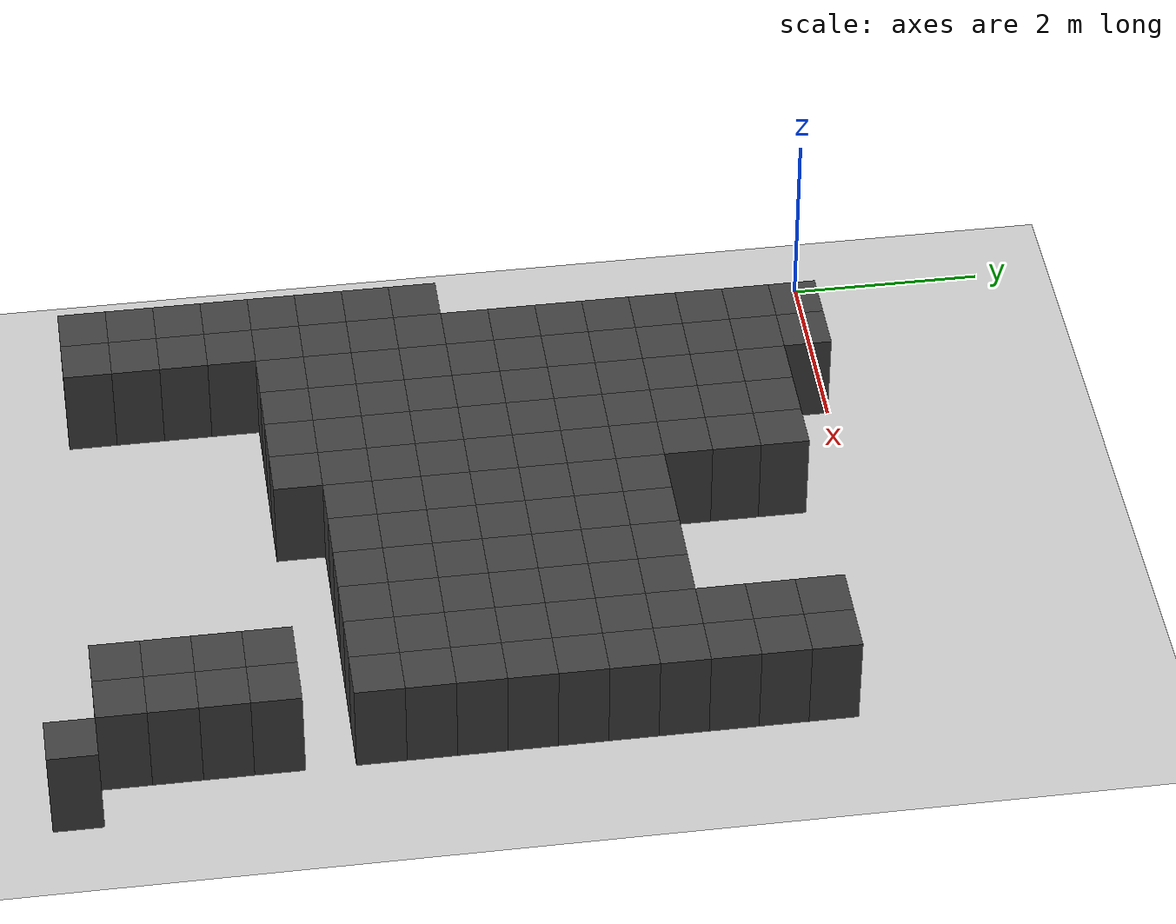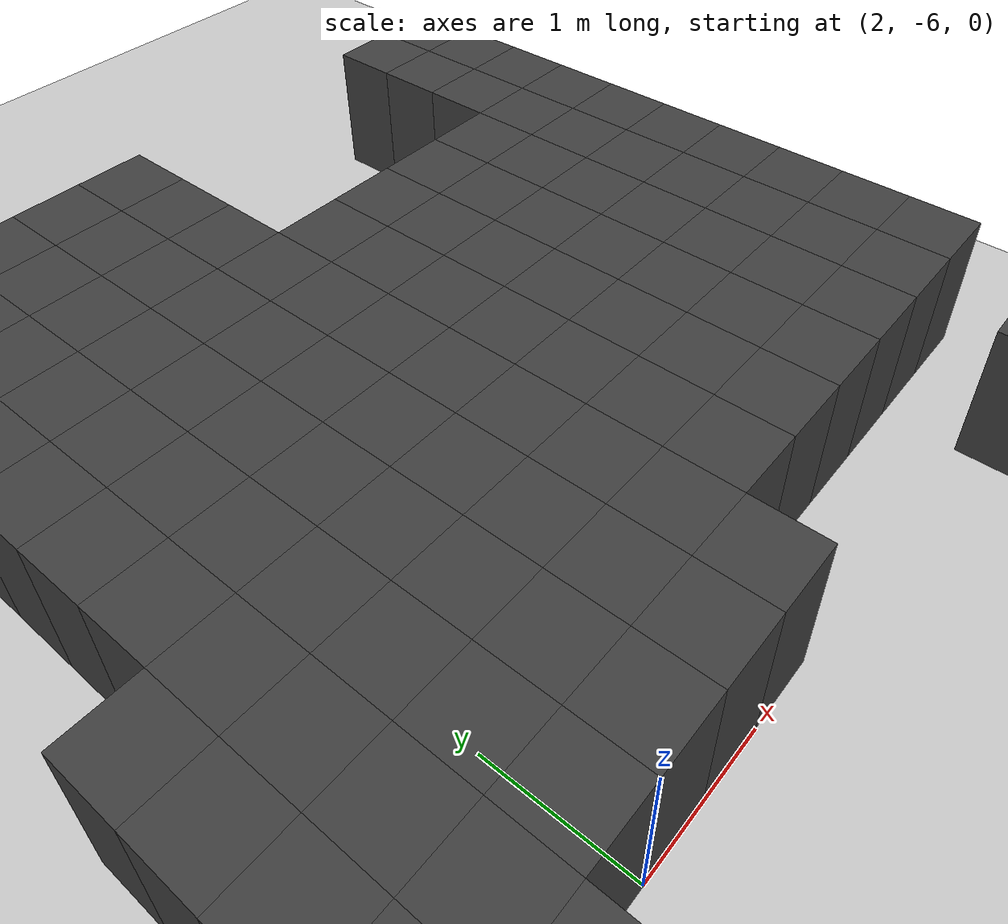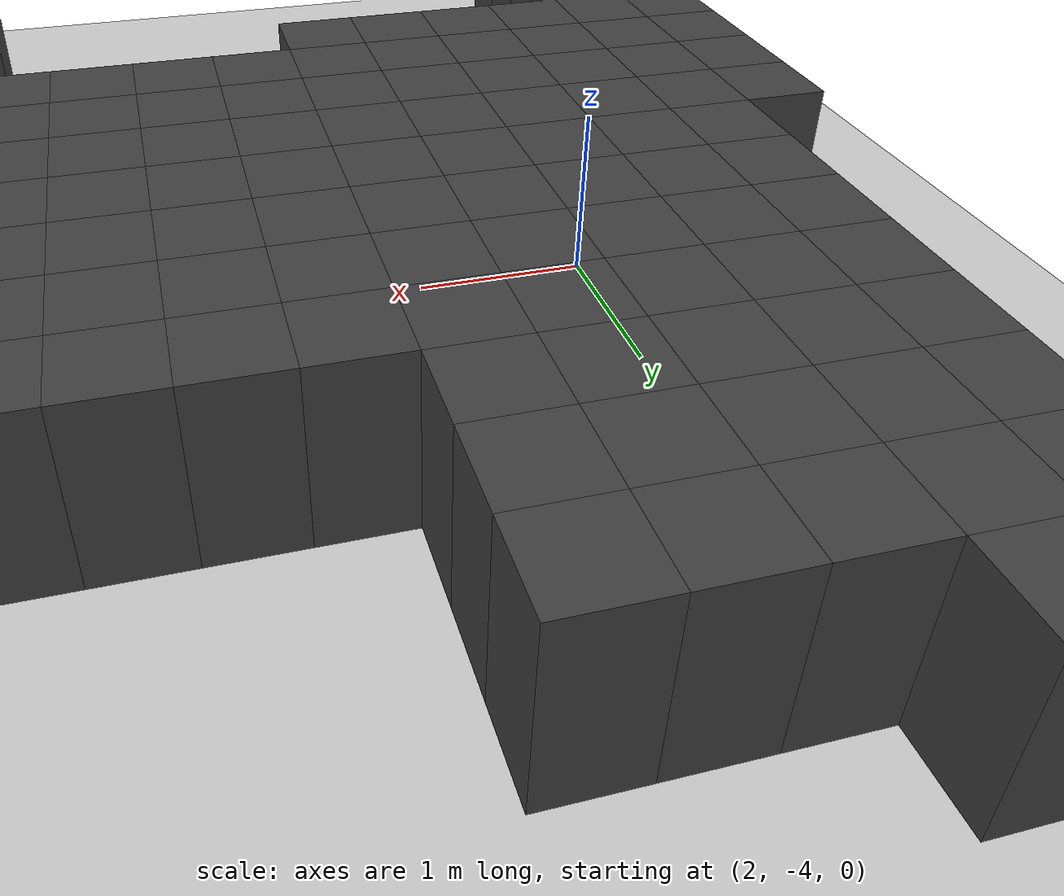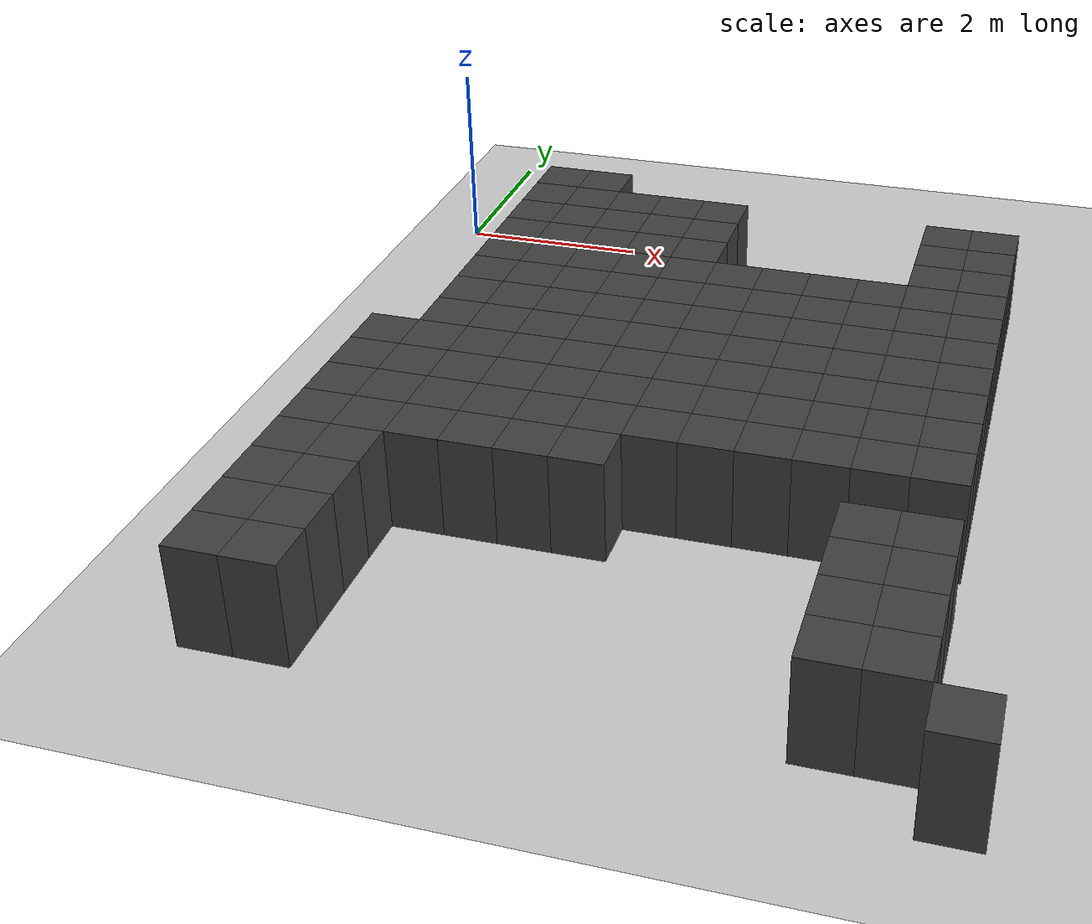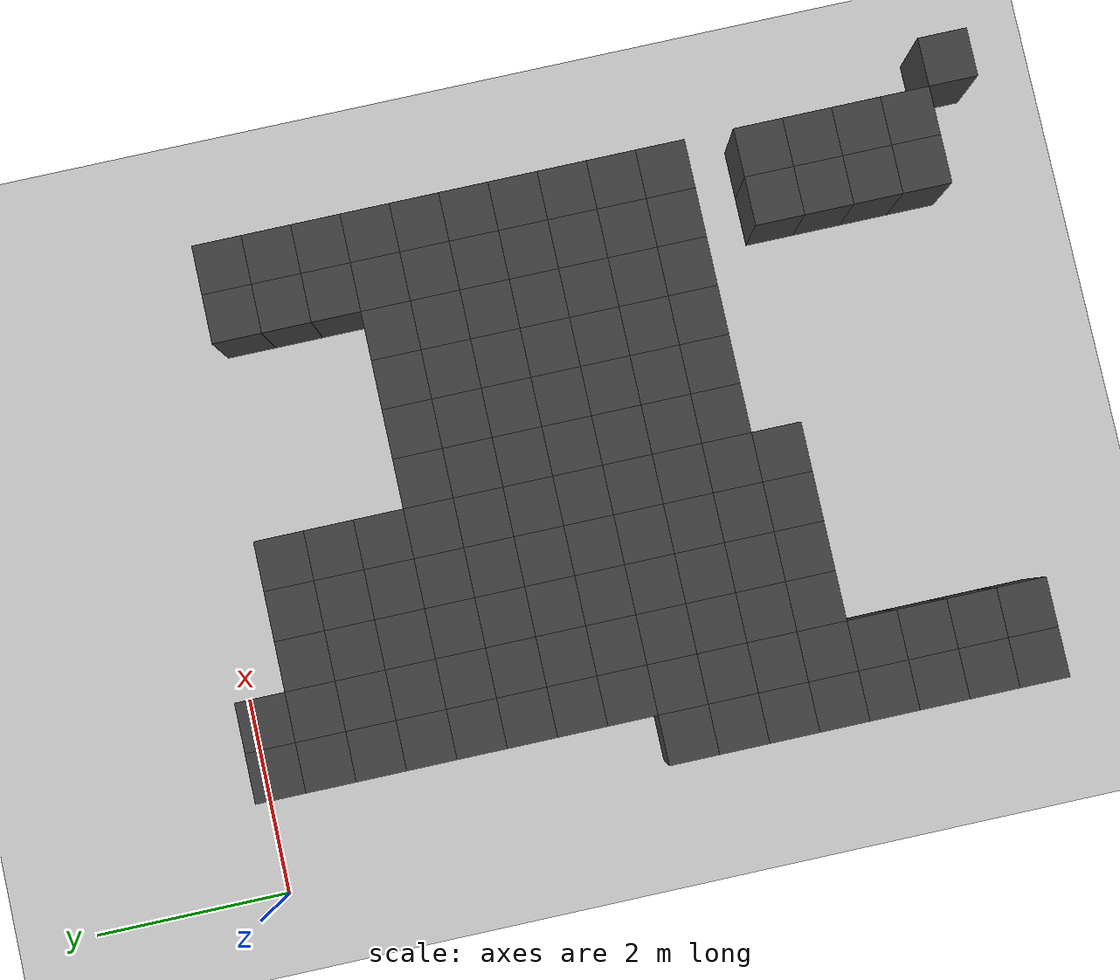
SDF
<sdf version="1.7">
 <world name="map_14495">
  <model name="ground_plane">
   <static>true</static>
   <link name="link">
    <collision name="collision">
     <geometry><plane><normal>0 0 1</normal><size>200 200</size></plane></geometry>
    </collision>
    <visual name="visual">
     <geometry><plane><normal>0 0 1</normal><size>200 200</size></plane></geometry>
     <material><ambient>0.8 0.8 0.8 1</ambient><diffuse>0.8 0.8 0.8 1</diffuse></material>
    </visual>
   </link>
  </model>
  <model name="maze_environment">
   <static>true</static>
   <link name="wall_960">
    <pose>1.250 -0.250 0.500 0 0 0</pose>
    <collision name="col"><geometry><box><size>0.5 0.5 1.0</size></box></geometry></collision>
    <visual name="vis">
     <geometry><box><size>0.5 0.5 1.0</size></box></geometry>
     <material><ambient>0.15 0.15 0.15 1</ambient><diffuse>0.25 0.25 0.25 1</diffuse></material>
    </visual>
   </link>
   <link name="wall_961">
    <pose>1.750 -0.250 0.500 0 0 0</pose>
    <collision name="col"><geometry><box><size>0.5 0.5 1.0</size></box></geometry></collision>
    <visual name="vis">
     <geometry><box><size>0.5 0.5 1.0</size></box></geometry>
     <material><ambient>0.15 0.15 0.15 1</ambient><diffuse>0.25 0.25 0.25 1</diffuse></material>
    </visual>
   </link>
   <link name="wall_981">
    <pose>1.250 -0.750 0.500 0 0 0</pose>
    <collision name="col"><geometry><box><size>0.5 0.5 1.0</size></box></geometry></collision>
    <visual name="vis">
     <geometry><box><size>0.5 0.5 1.0</size></box></geometry>
     <material><ambient>0.15 0.15 0.15 1</ambient><diffuse>0.25 0.25 0.25 1</diffuse></material>
    </visual>
   </link>
   <link name="wall_982">
    <pose>1.750 -0.750 0.500 0 0 0</pose>
    <collision name="col"><geometry><box><size>0.5 0.5 1.0</size></box></geometry></collision>
    <visual name="vis">
     <geometry><box><size>0.5 0.5 1.0</size></box></geometry>
     <material><ambient>0.15 0.15 0.15 1</ambient><diffuse>0.25 0.25 0.25 1</diffuse></material>
    </visual>
   </link>
   <link name="wall_983">
    <pose>2.250 -0.750 0.500 0 0 0</pose>
    <collision name="col"><geometry><box><size>0.5 0.5 1.0</size></box></geometry></collision>
    <visual name="vis">
     <geometry><box><size>0.5 0.5 1.0</size></box></geometry>
     <material><ambient>0.15 0.15 0.15 1</ambient><diffuse>0.25 0.25 0.25 1</diffuse></material>
    </visual>
   </link>
   <link name="wall_984">
    <pose>2.750 -0.750 0.500 0 0 0</pose>
    <collision name="col"><geometry><box><size>0.5 0.5 1.0</size></box></geometry></collision>
    <visual name="vis">
     <geometry><box><size>0.5 0.5 1.0</size></box></geometry>
     <material><ambient>0.15 0.15 0.15 1</ambient><diffuse>0.25 0.25 0.25 1</diffuse></material>
    </visual>
   </link>
   <link name="wall_985">
    <pose>3.250 -0.750 0.500 0 0 0</pose>
    <collision name="col"><geometry><box><size>0.5 0.5 1.0</size></box></geometry></collision>
    <visual name="vis">
     <geometry><box><size>0.5 0.5 1.0</size></box></geometry>
     <material><ambient>0.15 0.15 0.15 1</ambient><diffuse>0.25 0.25 0.25 1</diffuse></material>
    </visual>
   </link>
   <link name="wall_986">
    <pose>5.750 -0.750 0.500 0 0 0</pose>
    <collision name="col"><geometry><box><size>0.5 0.5 1.0</size></box></geometry></collision>
    <visual name="vis">
     <geometry><box><size>0.5 0.5 1.0</size></box></geometry>
     <material><ambient>0.15 0.15 0.15 1</ambient><diffuse>0.25 0.25 0.25 1</diffuse></material>
    </visual>
   </link>
   <link name="wall_987">
    <pose>6.250 -0.750 0.500 0 0 0</pose>
    <collision name="col"><geometry><box><size>0.5 0.5 1.0</size></box></geometry></collision>
    <visual name="vis">
     <geometry><box><size>0.5 0.5 1.0</size></box></geometry>
     <material><ambient>0.15 0.15 0.15 1</ambient><diffuse>0.25 0.25 0.25 1</diffuse></material>
    </visual>
   </link>
   <link name="wall_1007">
    <pose>1.250 -1.250 0.500 0 0 0</pose>
    <collision name="col"><geometry><box><size>0.5 0.5 1.0</size></box></geometry></collision>
    <visual name="vis">
     <geometry><box><size>0.5 0.5 1.0</size></box></geometry>
     <material><ambient>0.15 0.15 0.15 1</ambient><diffuse>0.25 0.25 0.25 1</diffuse></material>
    </visual>
   </link>
   <link name="wall_1008">
    <pose>1.750 -1.250 0.500 0 0 0</pose>
    <collision name="col"><geometry><box><size>0.5 0.5 1.0</size></box></geometry></collision>
    <visual name="vis">
     <geometry><box><size>0.5 0.5 1.0</size></box></geometry>
     <material><ambient>0.15 0.15 0.15 1</ambient><diffuse>0.25 0.25 0.25 1</diffuse></material>
    </visual>
   </link>
   <link name="wall_1009">
    <pose>2.250 -1.250 0.500 0 0 0</pose>
    <collision name="col"><geometry><box><size>0.5 0.5 1.0</size></box></geometry></collision>
    <visual name="vis">
     <geometry><box><size>0.5 0.5 1.0</size></box></geometry>
     <material><ambient>0.15 0.15 0.15 1</ambient><diffuse>0.25 0.25 0.25 1</diffuse></material>
    </visual>
   </link>
   <link name="wall_1010">
    <pose>2.750 -1.250 0.500 0 0 0</pose>
    <collision name="col"><geometry><box><size>0.5 0.5 1.0</size></box></geometry></collision>
    <visual name="vis">
     <geometry><box><size>0.5 0.5 1.0</size></box></geometry>
     <material><ambient>0.15 0.15 0.15 1</ambient><diffuse>0.25 0.25 0.25 1</diffuse></material>
    </visual>
   </link>
   <link name="wall_1011">
    <pose>3.250 -1.250 0.500 0 0 0</pose>
    <collision name="col"><geometry><box><size>0.5 0.5 1.0</size></box></geometry></collision>
    <visual name="vis">
     <geometry><box><size>0.5 0.5 1.0</size></box></geometry>
     <material><ambient>0.15 0.15 0.15 1</ambient><diffuse>0.25 0.25 0.25 1</diffuse></material>
    </visual>
   </link>
   <link name="wall_1012">
    <pose>5.750 -1.250 0.500 0 0 0</pose>
    <collision name="col"><geometry><box><size>0.5 0.5 1.0</size></box></geometry></collision>
    <visual name="vis">
     <geometry><box><size>0.5 0.5 1.0</size></box></geometry>
     <material><ambient>0.15 0.15 0.15 1</ambient><diffuse>0.25 0.25 0.25 1</diffuse></material>
    </visual>
   </link>
   <link name="wall_1013">
    <pose>6.250 -1.250 0.500 0 0 0</pose>
    <collision name="col"><geometry><box><size>0.5 0.5 1.0</size></box></geometry></collision>
    <visual name="vis">
     <geometry><box><size>0.5 0.5 1.0</size></box></geometry>
     <material><ambient>0.15 0.15 0.15 1</ambient><diffuse>0.25 0.25 0.25 1</diffuse></material>
    </visual>
   </link>
   <link name="wall_1033">
    <pose>1.250 -1.750 0.500 0 0 0</pose>
    <collision name="col"><geometry><box><size>0.5 0.5 1.0</size></box></geometry></collision>
    <visual name="vis">
     <geometry><box><size>0.5 0.5 1.0</size></box></geometry>
     <material><ambient>0.15 0.15 0.15 1</ambient><diffuse>0.25 0.25 0.25 1</diffuse></material>
    </visual>
   </link>
   <link name="wall_1034">
    <pose>1.750 -1.750 0.500 0 0 0</pose>
    <collision name="col"><geometry><box><size>0.5 0.5 1.0</size></box></geometry></collision>
    <visual name="vis">
     <geometry><box><size>0.5 0.5 1.0</size></box></geometry>
     <material><ambient>0.15 0.15 0.15 1</ambient><diffuse>0.25 0.25 0.25 1</diffuse></material>
    </visual>
   </link>
   <link name="wall_1035">
    <pose>2.250 -1.750 0.500 0 0 0</pose>
    <collision name="col"><geometry><box><size>0.5 0.5 1.0</size></box></geometry></collision>
    <visual name="vis">
     <geometry><box><size>0.5 0.5 1.0</size></box></geometry>
     <material><ambient>0.15 0.15 0.15 1</ambient><diffuse>0.25 0.25 0.25 1</diffuse></material>
    </visual>
   </link>
   <link name="wall_1036">
    <pose>2.750 -1.750 0.500 0 0 0</pose>
    <collision name="col"><geometry><box><size>0.5 0.5 1.0</size></box></geometry></collision>
    <visual name="vis">
     <geometry><box><size>0.5 0.5 1.0</size></box></geometry>
     <material><ambient>0.15 0.15 0.15 1</ambient><diffuse>0.25 0.25 0.25 1</diffuse></material>
    </visual>
   </link>
   <link name="wall_1037">
    <pose>3.250 -1.750 0.500 0 0 0</pose>
    <collision name="col"><geometry><box><size>0.5 0.5 1.0</size></box></geometry></collision>
    <visual name="vis">
     <geometry><box><size>0.5 0.5 1.0</size></box></geometry>
     <material><ambient>0.15 0.15 0.15 1</ambient><diffuse>0.25 0.25 0.25 1</diffuse></material>
    </visual>
   </link>
   <link name="wall_1038">
    <pose>5.750 -1.750 0.500 0 0 0</pose>
    <collision name="col"><geometry><box><size>0.5 0.5 1.0</size></box></geometry></collision>
    <visual name="vis">
     <geometry><box><size>0.5 0.5 1.0</size></box></geometry>
     <material><ambient>0.15 0.15 0.15 1</ambient><diffuse>0.25 0.25 0.25 1</diffuse></material>
    </visual>
   </link>
   <link name="wall_1039">
    <pose>6.250 -1.750 0.500 0 0 0</pose>
    <collision name="col"><geometry><box><size>0.5 0.5 1.0</size></box></geometry></collision>
    <visual name="vis">
     <geometry><box><size>0.5 0.5 1.0</size></box></geometry>
     <material><ambient>0.15 0.15 0.15 1</ambient><diffuse>0.25 0.25 0.25 1</diffuse></material>
    </visual>
   </link>
   <link name="wall_1057">
    <pose>1.250 -2.250 0.500 0 0 0</pose>
    <collision name="col"><geometry><box><size>0.5 0.5 1.0</size></box></geometry></collision>
    <visual name="vis">
     <geometry><box><size>0.5 0.5 1.0</size></box></geometry>
     <material><ambient>0.15 0.15 0.15 1</ambient><diffuse>0.25 0.25 0.25 1</diffuse></material>
    </visual>
   </link>
   <link name="wall_1058">
    <pose>1.750 -2.250 0.500 0 0 0</pose>
    <collision name="col"><geometry><box><size>0.5 0.5 1.0</size></box></geometry></collision>
    <visual name="vis">
     <geometry><box><size>0.5 0.5 1.0</size></box></geometry>
     <material><ambient>0.15 0.15 0.15 1</ambient><diffuse>0.25 0.25 0.25 1</diffuse></material>
    </visual>
   </link>
   <link name="wall_1059">
    <pose>2.250 -2.250 0.500 0 0 0</pose>
    <collision name="col"><geometry><box><size>0.5 0.5 1.0</size></box></geometry></collision>
    <visual name="vis">
     <geometry><box><size>0.5 0.5 1.0</size></box></geometry>
     <material><ambient>0.15 0.15 0.15 1</ambient><diffuse>0.25 0.25 0.25 1</diffuse></material>
    </visual>
   </link>
   <link name="wall_1060">
    <pose>2.750 -2.250 0.500 0 0 0</pose>
    <collision name="col"><geometry><box><size>0.5 0.5 1.0</size></box></geometry></collision>
    <visual name="vis">
     <geometry><box><size>0.5 0.5 1.0</size></box></geometry>
     <material><ambient>0.15 0.15 0.15 1</ambient><diffuse>0.25 0.25 0.25 1</diffuse></material>
    </visual>
   </link>
   <link name="wall_1061">
    <pose>3.250 -2.250 0.500 0 0 0</pose>
    <collision name="col"><geometry><box><size>0.5 0.5 1.0</size></box></geometry></collision>
    <visual name="vis">
     <geometry><box><size>0.5 0.5 1.0</size></box></geometry>
     <material><ambient>0.15 0.15 0.15 1</ambient><diffuse>0.25 0.25 0.25 1</diffuse></material>
    </visual>
   </link>
   <link name="wall_1062">
    <pose>3.750 -2.250 0.500 0 0 0</pose>
    <collision name="col"><geometry><box><size>0.5 0.5 1.0</size></box></geometry></collision>
    <visual name="vis">
     <geometry><box><size>0.5 0.5 1.0</size></box></geometry>
     <material><ambient>0.15 0.15 0.15 1</ambient><diffuse>0.25 0.25 0.25 1</diffuse></material>
    </visual>
   </link>
   <link name="wall_1063">
    <pose>4.250 -2.250 0.500 0 0 0</pose>
    <collision name="col"><geometry><box><size>0.5 0.5 1.0</size></box></geometry></collision>
    <visual name="vis">
     <geometry><box><size>0.5 0.5 1.0</size></box></geometry>
     <material><ambient>0.15 0.15 0.15 1</ambient><diffuse>0.25 0.25 0.25 1</diffuse></material>
    </visual>
   </link>
   <link name="wall_1064">
    <pose>4.750 -2.250 0.500 0 0 0</pose>
    <collision name="col"><geometry><box><size>0.5 0.5 1.0</size></box></geometry></collision>
    <visual name="vis">
     <geometry><box><size>0.5 0.5 1.0</size></box></geometry>
     <material><ambient>0.15 0.15 0.15 1</ambient><diffuse>0.25 0.25 0.25 1</diffuse></material>
    </visual>
   </link>
   <link name="wall_1065">
    <pose>5.250 -2.250 0.500 0 0 0</pose>
    <collision name="col"><geometry><box><size>0.5 0.5 1.0</size></box></geometry></collision>
    <visual name="vis">
     <geometry><box><size>0.5 0.5 1.0</size></box></geometry>
     <material><ambient>0.15 0.15 0.15 1</ambient><diffuse>0.25 0.25 0.25 1</diffuse></material>
    </visual>
   </link>
   <link name="wall_1066">
    <pose>5.750 -2.250 0.500 0 0 0</pose>
    <collision name="col"><geometry><box><size>0.5 0.5 1.0</size></box></geometry></collision>
    <visual name="vis">
     <geometry><box><size>0.5 0.5 1.0</size></box></geometry>
     <material><ambient>0.15 0.15 0.15 1</ambient><diffuse>0.25 0.25 0.25 1</diffuse></material>
    </visual>
   </link>
   <link name="wall_1067">
    <pose>6.250 -2.250 0.500 0 0 0</pose>
    <collision name="col"><geometry><box><size>0.5 0.5 1.0</size></box></geometry></collision>
    <visual name="vis">
     <geometry><box><size>0.5 0.5 1.0</size></box></geometry>
     <material><ambient>0.15 0.15 0.15 1</ambient><diffuse>0.25 0.25 0.25 1</diffuse></material>
    </visual>
   </link>
   <link name="wall_1092">
    <pose>1.250 -2.750 0.500 0 0 0</pose>
    <collision name="col"><geometry><box><size>0.5 0.5 1.0</size></box></geometry></collision>
    <visual name="vis">
     <geometry><box><size>0.5 0.5 1.0</size></box></geometry>
     <material><ambient>0.15 0.15 0.15 1</ambient><diffuse>0.25 0.25 0.25 1</diffuse></material>
    </visual>
   </link>
   <link name="wall_1093">
    <pose>1.750 -2.750 0.500 0 0 0</pose>
    <collision name="col"><geometry><box><size>0.5 0.5 1.0</size></box></geometry></collision>
    <visual name="vis">
     <geometry><box><size>0.5 0.5 1.0</size></box></geometry>
     <material><ambient>0.15 0.15 0.15 1</ambient><diffuse>0.25 0.25 0.25 1</diffuse></material>
    </visual>
   </link>
   <link name="wall_1094">
    <pose>2.250 -2.750 0.500 0 0 0</pose>
    <collision name="col"><geometry><box><size>0.5 0.5 1.0</size></box></geometry></collision>
    <visual name="vis">
     <geometry><box><size>0.5 0.5 1.0</size></box></geometry>
     <material><ambient>0.15 0.15 0.15 1</ambient><diffuse>0.25 0.25 0.25 1</diffuse></material>
    </visual>
   </link>
   <link name="wall_1095">
    <pose>2.750 -2.750 0.500 0 0 0</pose>
    <collision name="col"><geometry><box><size>0.5 0.5 1.0</size></box></geometry></collision>
    <visual name="vis">
     <geometry><box><size>0.5 0.5 1.0</size></box></geometry>
     <material><ambient>0.15 0.15 0.15 1</ambient><diffuse>0.25 0.25 0.25 1</diffuse></material>
    </visual>
   </link>
   <link name="wall_1096">
    <pose>3.250 -2.750 0.500 0 0 0</pose>
    <collision name="col"><geometry><box><size>0.5 0.5 1.0</size></box></geometry></collision>
    <visual name="vis">
     <geometry><box><size>0.5 0.5 1.0</size></box></geometry>
     <material><ambient>0.15 0.15 0.15 1</ambient><diffuse>0.25 0.25 0.25 1</diffuse></material>
    </visual>
   </link>
   <link name="wall_1097">
    <pose>3.750 -2.750 0.500 0 0 0</pose>
    <collision name="col"><geometry><box><size>0.5 0.5 1.0</size></box></geometry></collision>
    <visual name="vis">
     <geometry><box><size>0.5 0.5 1.0</size></box></geometry>
     <material><ambient>0.15 0.15 0.15 1</ambient><diffuse>0.25 0.25 0.25 1</diffuse></material>
    </visual>
   </link>
   <link name="wall_1098">
    <pose>4.250 -2.750 0.500 0 0 0</pose>
    <collision name="col"><geometry><box><size>0.5 0.5 1.0</size></box></geometry></collision>
    <visual name="vis">
     <geometry><box><size>0.5 0.5 1.0</size></box></geometry>
     <material><ambient>0.15 0.15 0.15 1</ambient><diffuse>0.25 0.25 0.25 1</diffuse></material>
    </visual>
   </link>
   <link name="wall_1099">
    <pose>4.750 -2.750 0.500 0 0 0</pose>
    <collision name="col"><geometry><box><size>0.5 0.5 1.0</size></box></geometry></collision>
    <visual name="vis">
     <geometry><box><size>0.5 0.5 1.0</size></box></geometry>
     <material><ambient>0.15 0.15 0.15 1</ambient><diffuse>0.25 0.25 0.25 1</diffuse></material>
    </visual>
   </link>
   <link name="wall_1100">
    <pose>5.250 -2.750 0.500 0 0 0</pose>
    <collision name="col"><geometry><box><size>0.5 0.5 1.0</size></box></geometry></collision>
    <visual name="vis">
     <geometry><box><size>0.5 0.5 1.0</size></box></geometry>
     <material><ambient>0.15 0.15 0.15 1</ambient><diffuse>0.25 0.25 0.25 1</diffuse></material>
    </visual>
   </link>
   <link name="wall_1101">
    <pose>5.750 -2.750 0.500 0 0 0</pose>
    <collision name="col"><geometry><box><size>0.5 0.5 1.0</size></box></geometry></collision>
    <visual name="vis">
     <geometry><box><size>0.5 0.5 1.0</size></box></geometry>
     <material><ambient>0.15 0.15 0.15 1</ambient><diffuse>0.25 0.25 0.25 1</diffuse></material>
    </visual>
   </link>
   <link name="wall_1102">
    <pose>6.250 -2.750 0.500 0 0 0</pose>
    <collision name="col"><geometry><box><size>0.5 0.5 1.0</size></box></geometry></collision>
    <visual name="vis">
     <geometry><box><size>0.5 0.5 1.0</size></box></geometry>
     <material><ambient>0.15 0.15 0.15 1</ambient><diffuse>0.25 0.25 0.25 1</diffuse></material>
    </visual>
   </link>
   <link name="wall_1127">
    <pose>1.250 -3.250 0.500 0 0 0</pose>
    <collision name="col"><geometry><box><size>0.5 0.5 1.0</size></box></geometry></collision>
    <visual name="vis">
     <geometry><box><size>0.5 0.5 1.0</size></box></geometry>
     <material><ambient>0.15 0.15 0.15 1</ambient><diffuse>0.25 0.25 0.25 1</diffuse></material>
    </visual>
   </link>
   <link name="wall_1128">
    <pose>1.750 -3.250 0.500 0 0 0</pose>
    <collision name="col"><geometry><box><size>0.5 0.5 1.0</size></box></geometry></collision>
    <visual name="vis">
     <geometry><box><size>0.5 0.5 1.0</size></box></geometry>
     <material><ambient>0.15 0.15 0.15 1</ambient><diffuse>0.25 0.25 0.25 1</diffuse></material>
    </visual>
   </link>
   <link name="wall_1129">
    <pose>2.250 -3.250 0.500 0 0 0</pose>
    <collision name="col"><geometry><box><size>0.5 0.5 1.0</size></box></geometry></collision>
    <visual name="vis">
     <geometry><box><size>0.5 0.5 1.0</size></box></geometry>
     <material><ambient>0.15 0.15 0.15 1</ambient><diffuse>0.25 0.25 0.25 1</diffuse></material>
    </visual>
   </link>
   <link name="wall_1130">
    <pose>2.750 -3.250 0.500 0 0 0</pose>
    <collision name="col"><geometry><box><size>0.5 0.5 1.0</size></box></geometry></collision>
    <visual name="vis">
     <geometry><box><size>0.5 0.5 1.0</size></box></geometry>
     <material><ambient>0.15 0.15 0.15 1</ambient><diffuse>0.25 0.25 0.25 1</diffuse></material>
    </visual>
   </link>
   <link name="wall_1131">
    <pose>3.250 -3.250 0.500 0 0 0</pose>
    <collision name="col"><geometry><box><size>0.5 0.5 1.0</size></box></geometry></collision>
    <visual name="vis">
     <geometry><box><size>0.5 0.5 1.0</size></box></geometry>
     <material><ambient>0.15 0.15 0.15 1</ambient><diffuse>0.25 0.25 0.25 1</diffuse></material>
    </visual>
   </link>
   <link name="wall_1132">
    <pose>3.750 -3.250 0.500 0 0 0</pose>
    <collision name="col"><geometry><box><size>0.5 0.5 1.0</size></box></geometry></collision>
    <visual name="vis">
     <geometry><box><size>0.5 0.5 1.0</size></box></geometry>
     <material><ambient>0.15 0.15 0.15 1</ambient><diffuse>0.25 0.25 0.25 1</diffuse></material>
    </visual>
   </link>
   <link name="wall_1133">
    <pose>4.250 -3.250 0.500 0 0 0</pose>
    <collision name="col"><geometry><box><size>0.5 0.5 1.0</size></box></geometry></collision>
    <visual name="vis">
     <geometry><box><size>0.5 0.5 1.0</size></box></geometry>
     <material><ambient>0.15 0.15 0.15 1</ambient><diffuse>0.25 0.25 0.25 1</diffuse></material>
    </visual>
   </link>
   <link name="wall_1134">
    <pose>4.750 -3.250 0.500 0 0 0</pose>
    <collision name="col"><geometry><box><size>0.5 0.5 1.0</size></box></geometry></collision>
    <visual name="vis">
     <geometry><box><size>0.5 0.5 1.0</size></box></geometry>
     <material><ambient>0.15 0.15 0.15 1</ambient><diffuse>0.25 0.25 0.25 1</diffuse></material>
    </visual>
   </link>
   <link name="wall_1135">
    <pose>5.250 -3.250 0.500 0 0 0</pose>
    <collision name="col"><geometry><box><size>0.5 0.5 1.0</size></box></geometry></collision>
    <visual name="vis">
     <geometry><box><size>0.5 0.5 1.0</size></box></geometry>
     <material><ambient>0.15 0.15 0.15 1</ambient><diffuse>0.25 0.25 0.25 1</diffuse></material>
    </visual>
   </link>
   <link name="wall_1136">
    <pose>5.750 -3.250 0.500 0 0 0</pose>
    <collision name="col"><geometry><box><size>0.5 0.5 1.0</size></box></geometry></collision>
    <visual name="vis">
     <geometry><box><size>0.5 0.5 1.0</size></box></geometry>
     <material><ambient>0.15 0.15 0.15 1</ambient><diffuse>0.25 0.25 0.25 1</diffuse></material>
    </visual>
   </link>
   <link name="wall_1137">
    <pose>6.250 -3.250 0.500 0 0 0</pose>
    <collision name="col"><geometry><box><size>0.5 0.5 1.0</size></box></geometry></collision>
    <visual name="vis">
     <geometry><box><size>0.5 0.5 1.0</size></box></geometry>
     <material><ambient>0.15 0.15 0.15 1</ambient><diffuse>0.25 0.25 0.25 1</diffuse></material>
    </visual>
   </link>
   <link name="wall_1174">
    <pose>1.250 -3.750 0.500 0 0 0</pose>
    <collision name="col"><geometry><box><size>0.5 0.5 1.0</size></box></geometry></collision>
    <visual name="vis">
     <geometry><box><size>0.5 0.5 1.0</size></box></geometry>
     <material><ambient>0.15 0.15 0.15 1</ambient><diffuse>0.25 0.25 0.25 1</diffuse></material>
    </visual>
   </link>
   <link name="wall_1175">
    <pose>1.750 -3.750 0.500 0 0 0</pose>
    <collision name="col"><geometry><box><size>0.5 0.5 1.0</size></box></geometry></collision>
    <visual name="vis">
     <geometry><box><size>0.5 0.5 1.0</size></box></geometry>
     <material><ambient>0.15 0.15 0.15 1</ambient><diffuse>0.25 0.25 0.25 1</diffuse></material>
    </visual>
   </link>
   <link name="wall_1176">
    <pose>2.250 -3.750 0.500 0 0 0</pose>
    <collision name="col"><geometry><box><size>0.5 0.5 1.0</size></box></geometry></collision>
    <visual name="vis">
     <geometry><box><size>0.5 0.5 1.0</size></box></geometry>
     <material><ambient>0.15 0.15 0.15 1</ambient><diffuse>0.25 0.25 0.25 1</diffuse></material>
    </visual>
   </link>
   <link name="wall_1177">
    <pose>2.750 -3.750 0.500 0 0 0</pose>
    <collision name="col"><geometry><box><size>0.5 0.5 1.0</size></box></geometry></collision>
    <visual name="vis">
     <geometry><box><size>0.5 0.5 1.0</size></box></geometry>
     <material><ambient>0.15 0.15 0.15 1</ambient><diffuse>0.25 0.25 0.25 1</diffuse></material>
    </visual>
   </link>
   <link name="wall_1178">
    <pose>3.250 -3.750 0.500 0 0 0</pose>
    <collision name="col"><geometry><box><size>0.5 0.5 1.0</size></box></geometry></collision>
    <visual name="vis">
     <geometry><box><size>0.5 0.5 1.0</size></box></geometry>
     <material><ambient>0.15 0.15 0.15 1</ambient><diffuse>0.25 0.25 0.25 1</diffuse></material>
    </visual>
   </link>
   <link name="wall_1179">
    <pose>3.750 -3.750 0.500 0 0 0</pose>
    <collision name="col"><geometry><box><size>0.5 0.5 1.0</size></box></geometry></collision>
    <visual name="vis">
     <geometry><box><size>0.5 0.5 1.0</size></box></geometry>
     <material><ambient>0.15 0.15 0.15 1</ambient><diffuse>0.25 0.25 0.25 1</diffuse></material>
    </visual>
   </link>
   <link name="wall_1180">
    <pose>4.250 -3.750 0.500 0 0 0</pose>
    <collision name="col"><geometry><box><size>0.5 0.5 1.0</size></box></geometry></collision>
    <visual name="vis">
     <geometry><box><size>0.5 0.5 1.0</size></box></geometry>
     <material><ambient>0.15 0.15 0.15 1</ambient><diffuse>0.25 0.25 0.25 1</diffuse></material>
    </visual>
   </link>
   <link name="wall_1181">
    <pose>4.750 -3.750 0.500 0 0 0</pose>
    <collision name="col"><geometry><box><size>0.5 0.5 1.0</size></box></geometry></collision>
    <visual name="vis">
     <geometry><box><size>0.5 0.5 1.0</size></box></geometry>
     <material><ambient>0.15 0.15 0.15 1</ambient><diffuse>0.25 0.25 0.25 1</diffuse></material>
    </visual>
   </link>
   <link name="wall_1182">
    <pose>5.250 -3.750 0.500 0 0 0</pose>
    <collision name="col"><geometry><box><size>0.5 0.5 1.0</size></box></geometry></collision>
    <visual name="vis">
     <geometry><box><size>0.5 0.5 1.0</size></box></geometry>
     <material><ambient>0.15 0.15 0.15 1</ambient><diffuse>0.25 0.25 0.25 1</diffuse></material>
    </visual>
   </link>
   <link name="wall_1183">
    <pose>5.750 -3.750 0.500 0 0 0</pose>
    <collision name="col"><geometry><box><size>0.5 0.5 1.0</size></box></geometry></collision>
    <visual name="vis">
     <geometry><box><size>0.5 0.5 1.0</size></box></geometry>
     <material><ambient>0.15 0.15 0.15 1</ambient><diffuse>0.25 0.25 0.25 1</diffuse></material>
    </visual>
   </link>
   <link name="wall_1184">
    <pose>6.250 -3.750 0.500 0 0 0</pose>
    <collision name="col"><geometry><box><size>0.5 0.5 1.0</size></box></geometry></collision>
    <visual name="vis">
     <geometry><box><size>0.5 0.5 1.0</size></box></geometry>
     <material><ambient>0.15 0.15 0.15 1</ambient><diffuse>0.25 0.25 0.25 1</diffuse></material>
    </visual>
   </link>
   <link name="wall_1220">
    <pose>0.750 -4.250 0.500 0 0 0</pose>
    <collision name="col"><geometry><box><size>0.5 0.5 1.0</size></box></geometry></collision>
    <visual name="vis">
     <geometry><box><size>0.5 0.5 1.0</size></box></geometry>
     <material><ambient>0.15 0.15 0.15 1</ambient><diffuse>0.25 0.25 0.25 1</diffuse></material>
    </visual>
   </link>
   <link name="wall_1221">
    <pose>1.250 -4.250 0.500 0 0 0</pose>
    <collision name="col"><geometry><box><size>0.5 0.5 1.0</size></box></geometry></collision>
    <visual name="vis">
     <geometry><box><size>0.5 0.5 1.0</size></box></geometry>
     <material><ambient>0.15 0.15 0.15 1</ambient><diffuse>0.25 0.25 0.25 1</diffuse></material>
    </visual>
   </link>
   <link name="wall_1222">
    <pose>1.750 -4.250 0.500 0 0 0</pose>
    <collision name="col"><geometry><box><size>0.5 0.5 1.0</size></box></geometry></collision>
    <visual name="vis">
     <geometry><box><size>0.5 0.5 1.0</size></box></geometry>
     <material><ambient>0.15 0.15 0.15 1</ambient><diffuse>0.25 0.25 0.25 1</diffuse></material>
    </visual>
   </link>
   <link name="wall_1223">
    <pose>2.250 -4.250 0.500 0 0 0</pose>
    <collision name="col"><geometry><box><size>0.5 0.5 1.0</size></box></geometry></collision>
    <visual name="vis">
     <geometry><box><size>0.5 0.5 1.0</size></box></geometry>
     <material><ambient>0.15 0.15 0.15 1</ambient><diffuse>0.25 0.25 0.25 1</diffuse></material>
    </visual>
   </link>
   <link name="wall_1224">
    <pose>2.750 -4.250 0.500 0 0 0</pose>
    <collision name="col"><geometry><box><size>0.5 0.5 1.0</size></box></geometry></collision>
    <visual name="vis">
     <geometry><box><size>0.5 0.5 1.0</size></box></geometry>
     <material><ambient>0.15 0.15 0.15 1</ambient><diffuse>0.25 0.25 0.25 1</diffuse></material>
    </visual>
   </link>
   <link name="wall_1225">
    <pose>3.250 -4.250 0.500 0 0 0</pose>
    <collision name="col"><geometry><box><size>0.5 0.5 1.0</size></box></geometry></collision>
    <visual name="vis">
     <geometry><box><size>0.5 0.5 1.0</size></box></geometry>
     <material><ambient>0.15 0.15 0.15 1</ambient><diffuse>0.25 0.25 0.25 1</diffuse></material>
    </visual>
   </link>
   <link name="wall_1226">
    <pose>3.750 -4.250 0.500 0 0 0</pose>
    <collision name="col"><geometry><box><size>0.5 0.5 1.0</size></box></geometry></collision>
    <visual name="vis">
     <geometry><box><size>0.5 0.5 1.0</size></box></geometry>
     <material><ambient>0.15 0.15 0.15 1</ambient><diffuse>0.25 0.25 0.25 1</diffuse></material>
    </visual>
   </link>
   <link name="wall_1227">
    <pose>4.250 -4.250 0.500 0 0 0</pose>
    <collision name="col"><geometry><box><size>0.5 0.5 1.0</size></box></geometry></collision>
    <visual name="vis">
     <geometry><box><size>0.5 0.5 1.0</size></box></geometry>
     <material><ambient>0.15 0.15 0.15 1</ambient><diffuse>0.25 0.25 0.25 1</diffuse></material>
    </visual>
   </link>
   <link name="wall_1228">
    <pose>4.750 -4.250 0.500 0 0 0</pose>
    <collision name="col"><geometry><box><size>0.5 0.5 1.0</size></box></geometry></collision>
    <visual name="vis">
     <geometry><box><size>0.5 0.5 1.0</size></box></geometry>
     <material><ambient>0.15 0.15 0.15 1</ambient><diffuse>0.25 0.25 0.25 1</diffuse></material>
    </visual>
   </link>
   <link name="wall_1229">
    <pose>5.250 -4.250 0.500 0 0 0</pose>
    <collision name="col"><geometry><box><size>0.5 0.5 1.0</size></box></geometry></collision>
    <visual name="vis">
     <geometry><box><size>0.5 0.5 1.0</size></box></geometry>
     <material><ambient>0.15 0.15 0.15 1</ambient><diffuse>0.25 0.25 0.25 1</diffuse></material>
    </visual>
   </link>
   <link name="wall_1230">
    <pose>5.750 -4.250 0.500 0 0 0</pose>
    <collision name="col"><geometry><box><size>0.5 0.5 1.0</size></box></geometry></collision>
    <visual name="vis">
     <geometry><box><size>0.5 0.5 1.0</size></box></geometry>
     <material><ambient>0.15 0.15 0.15 1</ambient><diffuse>0.25 0.25 0.25 1</diffuse></material>
    </visual>
   </link>
   <link name="wall_1231">
    <pose>6.250 -4.250 0.500 0 0 0</pose>
    <collision name="col"><geometry><box><size>0.5 0.5 1.0</size></box></geometry></collision>
    <visual name="vis">
     <geometry><box><size>0.5 0.5 1.0</size></box></geometry>
     <material><ambient>0.15 0.15 0.15 1</ambient><diffuse>0.25 0.25 0.25 1</diffuse></material>
    </visual>
   </link>
   <link name="wall_1263">
    <pose>0.750 -4.750 0.500 0 0 0</pose>
    <collision name="col"><geometry><box><size>0.5 0.5 1.0</size></box></geometry></collision>
    <visual name="vis">
     <geometry><box><size>0.5 0.5 1.0</size></box></geometry>
     <material><ambient>0.15 0.15 0.15 1</ambient><diffuse>0.25 0.25 0.25 1</diffuse></material>
    </visual>
   </link>
   <link name="wall_1264">
    <pose>1.250 -4.750 0.500 0 0 0</pose>
    <collision name="col"><geometry><box><size>0.5 0.5 1.0</size></box></geometry></collision>
    <visual name="vis">
     <geometry><box><size>0.5 0.5 1.0</size></box></geometry>
     <material><ambient>0.15 0.15 0.15 1</ambient><diffuse>0.25 0.25 0.25 1</diffuse></material>
    </visual>
   </link>
   <link name="wall_1265">
    <pose>1.750 -4.750 0.500 0 0 0</pose>
    <collision name="col"><geometry><box><size>0.5 0.5 1.0</size></box></geometry></collision>
    <visual name="vis">
     <geometry><box><size>0.5 0.5 1.0</size></box></geometry>
     <material><ambient>0.15 0.15 0.15 1</ambient><diffuse>0.25 0.25 0.25 1</diffuse></material>
    </visual>
   </link>
   <link name="wall_1266">
    <pose>2.250 -4.750 0.500 0 0 0</pose>
    <collision name="col"><geometry><box><size>0.5 0.5 1.0</size></box></geometry></collision>
    <visual name="vis">
     <geometry><box><size>0.5 0.5 1.0</size></box></geometry>
     <material><ambient>0.15 0.15 0.15 1</ambient><diffuse>0.25 0.25 0.25 1</diffuse></material>
    </visual>
   </link>
   <link name="wall_1267">
    <pose>2.750 -4.750 0.500 0 0 0</pose>
    <collision name="col"><geometry><box><size>0.5 0.5 1.0</size></box></geometry></collision>
    <visual name="vis">
     <geometry><box><size>0.5 0.5 1.0</size></box></geometry>
     <material><ambient>0.15 0.15 0.15 1</ambient><diffuse>0.25 0.25 0.25 1</diffuse></material>
    </visual>
   </link>
   <link name="wall_1268">
    <pose>3.250 -4.750 0.500 0 0 0</pose>
    <collision name="col"><geometry><box><size>0.5 0.5 1.0</size></box></geometry></collision>
    <visual name="vis">
     <geometry><box><size>0.5 0.5 1.0</size></box></geometry>
     <material><ambient>0.15 0.15 0.15 1</ambient><diffuse>0.25 0.25 0.25 1</diffuse></material>
    </visual>
   </link>
   <link name="wall_1269">
    <pose>3.750 -4.750 0.500 0 0 0</pose>
    <collision name="col"><geometry><box><size>0.5 0.5 1.0</size></box></geometry></collision>
    <visual name="vis">
     <geometry><box><size>0.5 0.5 1.0</size></box></geometry>
     <material><ambient>0.15 0.15 0.15 1</ambient><diffuse>0.25 0.25 0.25 1</diffuse></material>
    </visual>
   </link>
   <link name="wall_1270">
    <pose>4.250 -4.750 0.500 0 0 0</pose>
    <collision name="col"><geometry><box><size>0.5 0.5 1.0</size></box></geometry></collision>
    <visual name="vis">
     <geometry><box><size>0.5 0.5 1.0</size></box></geometry>
     <material><ambient>0.15 0.15 0.15 1</ambient><diffuse>0.25 0.25 0.25 1</diffuse></material>
    </visual>
   </link>
   <link name="wall_1271">
    <pose>4.750 -4.750 0.500 0 0 0</pose>
    <collision name="col"><geometry><box><size>0.5 0.5 1.0</size></box></geometry></collision>
    <visual name="vis">
     <geometry><box><size>0.5 0.5 1.0</size></box></geometry>
     <material><ambient>0.15 0.15 0.15 1</ambient><diffuse>0.25 0.25 0.25 1</diffuse></material>
    </visual>
   </link>
   <link name="wall_1272">
    <pose>5.250 -4.750 0.500 0 0 0</pose>
    <collision name="col"><geometry><box><size>0.5 0.5 1.0</size></box></geometry></collision>
    <visual name="vis">
     <geometry><box><size>0.5 0.5 1.0</size></box></geometry>
     <material><ambient>0.15 0.15 0.15 1</ambient><diffuse>0.25 0.25 0.25 1</diffuse></material>
    </visual>
   </link>
   <link name="wall_1273">
    <pose>5.750 -4.750 0.500 0 0 0</pose>
    <collision name="col"><geometry><box><size>0.5 0.5 1.0</size></box></geometry></collision>
    <visual name="vis">
     <geometry><box><size>0.5 0.5 1.0</size></box></geometry>
     <material><ambient>0.15 0.15 0.15 1</ambient><diffuse>0.25 0.25 0.25 1</diffuse></material>
    </visual>
   </link>
   <link name="wall_1274">
    <pose>6.250 -4.750 0.500 0 0 0</pose>
    <collision name="col"><geometry><box><size>0.5 0.5 1.0</size></box></geometry></collision>
    <visual name="vis">
     <geometry><box><size>0.5 0.5 1.0</size></box></geometry>
     <material><ambient>0.15 0.15 0.15 1</ambient><diffuse>0.25 0.25 0.25 1</diffuse></material>
    </visual>
   </link>
   <link name="wall_1299">
    <pose>0.750 -5.250 0.500 0 0 0</pose>
    <collision name="col"><geometry><box><size>0.5 0.5 1.0</size></box></geometry></collision>
    <visual name="vis">
     <geometry><box><size>0.5 0.5 1.0</size></box></geometry>
     <material><ambient>0.15 0.15 0.15 1</ambient><diffuse>0.25 0.25 0.25 1</diffuse></material>
    </visual>
   </link>
   <link name="wall_1300">
    <pose>1.250 -5.250 0.500 0 0 0</pose>
    <collision name="col"><geometry><box><size>0.5 0.5 1.0</size></box></geometry></collision>
    <visual name="vis">
     <geometry><box><size>0.5 0.5 1.0</size></box></geometry>
     <material><ambient>0.15 0.15 0.15 1</ambient><diffuse>0.25 0.25 0.25 1</diffuse></material>
    </visual>
   </link>
   <link name="wall_1301">
    <pose>1.750 -5.250 0.500 0 0 0</pose>
    <collision name="col"><geometry><box><size>0.5 0.5 1.0</size></box></geometry></collision>
    <visual name="vis">
     <geometry><box><size>0.5 0.5 1.0</size></box></geometry>
     <material><ambient>0.15 0.15 0.15 1</ambient><diffuse>0.25 0.25 0.25 1</diffuse></material>
    </visual>
   </link>
   <link name="wall_1302">
    <pose>2.250 -5.250 0.500 0 0 0</pose>
    <collision name="col"><geometry><box><size>0.5 0.5 1.0</size></box></geometry></collision>
    <visual name="vis">
     <geometry><box><size>0.5 0.5 1.0</size></box></geometry>
     <material><ambient>0.15 0.15 0.15 1</ambient><diffuse>0.25 0.25 0.25 1</diffuse></material>
    </visual>
   </link>
   <link name="wall_1303">
    <pose>2.750 -5.250 0.500 0 0 0</pose>
    <collision name="col"><geometry><box><size>0.5 0.5 1.0</size></box></geometry></collision>
    <visual name="vis">
     <geometry><box><size>0.5 0.5 1.0</size></box></geometry>
     <material><ambient>0.15 0.15 0.15 1</ambient><diffuse>0.25 0.25 0.25 1</diffuse></material>
    </visual>
   </link>
   <link name="wall_1304">
    <pose>3.250 -5.250 0.500 0 0 0</pose>
    <collision name="col"><geometry><box><size>0.5 0.5 1.0</size></box></geometry></collision>
    <visual name="vis">
     <geometry><box><size>0.5 0.5 1.0</size></box></geometry>
     <material><ambient>0.15 0.15 0.15 1</ambient><diffuse>0.25 0.25 0.25 1</diffuse></material>
    </visual>
   </link>
   <link name="wall_1305">
    <pose>3.750 -5.250 0.500 0 0 0</pose>
    <collision name="col"><geometry><box><size>0.5 0.5 1.0</size></box></geometry></collision>
    <visual name="vis">
     <geometry><box><size>0.5 0.5 1.0</size></box></geometry>
     <material><ambient>0.15 0.15 0.15 1</ambient><diffuse>0.25 0.25 0.25 1</diffuse></material>
    </visual>
   </link>
   <link name="wall_1306">
    <pose>4.250 -5.250 0.500 0 0 0</pose>
    <collision name="col"><geometry><box><size>0.5 0.5 1.0</size></box></geometry></collision>
    <visual name="vis">
     <geometry><box><size>0.5 0.5 1.0</size></box></geometry>
     <material><ambient>0.15 0.15 0.15 1</ambient><diffuse>0.25 0.25 0.25 1</diffuse></material>
    </visual>
   </link>
   <link name="wall_1307">
    <pose>4.750 -5.250 0.500 0 0 0</pose>
    <collision name="col"><geometry><box><size>0.5 0.5 1.0</size></box></geometry></collision>
    <visual name="vis">
     <geometry><box><size>0.5 0.5 1.0</size></box></geometry>
     <material><ambient>0.15 0.15 0.15 1</ambient><diffuse>0.25 0.25 0.25 1</diffuse></material>
    </visual>
   </link>
   <link name="wall_1308">
    <pose>5.250 -5.250 0.500 0 0 0</pose>
    <collision name="col"><geometry><box><size>0.5 0.5 1.0</size></box></geometry></collision>
    <visual name="vis">
     <geometry><box><size>0.5 0.5 1.0</size></box></geometry>
     <material><ambient>0.15 0.15 0.15 1</ambient><diffuse>0.25 0.25 0.25 1</diffuse></material>
    </visual>
   </link>
   <link name="wall_1309">
    <pose>5.750 -5.250 0.500 0 0 0</pose>
    <collision name="col"><geometry><box><size>0.5 0.5 1.0</size></box></geometry></collision>
    <visual name="vis">
     <geometry><box><size>0.5 0.5 1.0</size></box></geometry>
     <material><ambient>0.15 0.15 0.15 1</ambient><diffuse>0.25 0.25 0.25 1</diffuse></material>
    </visual>
   </link>
   <link name="wall_1310">
    <pose>6.250 -5.250 0.500 0 0 0</pose>
    <collision name="col"><geometry><box><size>0.5 0.5 1.0</size></box></geometry></collision>
    <visual name="vis">
     <geometry><box><size>0.5 0.5 1.0</size></box></geometry>
     <material><ambient>0.15 0.15 0.15 1</ambient><diffuse>0.25 0.25 0.25 1</diffuse></material>
    </visual>
   </link>
   <link name="wall_1329">
    <pose>0.750 -5.750 0.500 0 0 0</pose>
    <collision name="col"><geometry><box><size>0.5 0.5 1.0</size></box></geometry></collision>
    <visual name="vis">
     <geometry><box><size>0.5 0.5 1.0</size></box></geometry>
     <material><ambient>0.15 0.15 0.15 1</ambient><diffuse>0.25 0.25 0.25 1</diffuse></material>
    </visual>
   </link>
   <link name="wall_1330">
    <pose>1.250 -5.750 0.500 0 0 0</pose>
    <collision name="col"><geometry><box><size>0.5 0.5 1.0</size></box></geometry></collision>
    <visual name="vis">
     <geometry><box><size>0.5 0.5 1.0</size></box></geometry>
     <material><ambient>0.15 0.15 0.15 1</ambient><diffuse>0.25 0.25 0.25 1</diffuse></material>
    </visual>
   </link>
   <link name="wall_1331">
    <pose>1.750 -5.750 0.500 0 0 0</pose>
    <collision name="col"><geometry><box><size>0.5 0.5 1.0</size></box></geometry></collision>
    <visual name="vis">
     <geometry><box><size>0.5 0.5 1.0</size></box></geometry>
     <material><ambient>0.15 0.15 0.15 1</ambient><diffuse>0.25 0.25 0.25 1</diffuse></material>
    </visual>
   </link>
   <link name="wall_1332">
    <pose>2.250 -5.750 0.500 0 0 0</pose>
    <collision name="col"><geometry><box><size>0.5 0.5 1.0</size></box></geometry></collision>
    <visual name="vis">
     <geometry><box><size>0.5 0.5 1.0</size></box></geometry>
     <material><ambient>0.15 0.15 0.15 1</ambient><diffuse>0.25 0.25 0.25 1</diffuse></material>
    </visual>
   </link>
   <link name="wall_1333">
    <pose>2.750 -5.750 0.500 0 0 0</pose>
    <collision name="col"><geometry><box><size>0.5 0.5 1.0</size></box></geometry></collision>
    <visual name="vis">
     <geometry><box><size>0.5 0.5 1.0</size></box></geometry>
     <material><ambient>0.15 0.15 0.15 1</ambient><diffuse>0.25 0.25 0.25 1</diffuse></material>
    </visual>
   </link>
   <link name="wall_1334">
    <pose>3.250 -5.750 0.500 0 0 0</pose>
    <collision name="col"><geometry><box><size>0.5 0.5 1.0</size></box></geometry></collision>
    <visual name="vis">
     <geometry><box><size>0.5 0.5 1.0</size></box></geometry>
     <material><ambient>0.15 0.15 0.15 1</ambient><diffuse>0.25 0.25 0.25 1</diffuse></material>
    </visual>
   </link>
   <link name="wall_1353">
    <pose>0.750 -6.250 0.500 0 0 0</pose>
    <collision name="col"><geometry><box><size>0.5 0.5 1.0</size></box></geometry></collision>
    <visual name="vis">
     <geometry><box><size>0.5 0.5 1.0</size></box></geometry>
     <material><ambient>0.15 0.15 0.15 1</ambient><diffuse>0.25 0.25 0.25 1</diffuse></material>
    </visual>
   </link>
   <link name="wall_1354">
    <pose>1.250 -6.250 0.500 0 0 0</pose>
    <collision name="col"><geometry><box><size>0.5 0.5 1.0</size></box></geometry></collision>
    <visual name="vis">
     <geometry><box><size>0.5 0.5 1.0</size></box></geometry>
     <material><ambient>0.15 0.15 0.15 1</ambient><diffuse>0.25 0.25 0.25 1</diffuse></material>
    </visual>
   </link>
   <link name="wall_1355">
    <pose>5.750 -6.250 0.500 0 0 0</pose>
    <collision name="col"><geometry><box><size>0.5 0.5 1.0</size></box></geometry></collision>
    <visual name="vis">
     <geometry><box><size>0.5 0.5 1.0</size></box></geometry>
     <material><ambient>0.15 0.15 0.15 1</ambient><diffuse>0.25 0.25 0.25 1</diffuse></material>
    </visual>
   </link>
   <link name="wall_1356">
    <pose>6.250 -6.250 0.500 0 0 0</pose>
    <collision name="col"><geometry><box><size>0.5 0.5 1.0</size></box></geometry></collision>
    <visual name="vis">
     <geometry><box><size>0.5 0.5 1.0</size></box></geometry>
     <material><ambient>0.15 0.15 0.15 1</ambient><diffuse>0.25 0.25 0.25 1</diffuse></material>
    </visual>
   </link>
   <link name="wall_1379">
    <pose>0.750 -6.750 0.500 0 0 0</pose>
    <collision name="col"><geometry><box><size>0.5 0.5 1.0</size></box></geometry></collision>
    <visual name="vis">
     <geometry><box><size>0.5 0.5 1.0</size></box></geometry>
     <material><ambient>0.15 0.15 0.15 1</ambient><diffuse>0.25 0.25 0.25 1</diffuse></material>
    </visual>
   </link>
   <link name="wall_1380">
    <pose>1.250 -6.750 0.500 0 0 0</pose>
    <collision name="col"><geometry><box><size>0.5 0.5 1.0</size></box></geometry></collision>
    <visual name="vis">
     <geometry><box><size>0.5 0.5 1.0</size></box></geometry>
     <material><ambient>0.15 0.15 0.15 1</ambient><diffuse>0.25 0.25 0.25 1</diffuse></material>
    </visual>
   </link>
   <link name="wall_1381">
    <pose>5.750 -6.750 0.500 0 0 0</pose>
    <collision name="col"><geometry><box><size>0.5 0.5 1.0</size></box></geometry></collision>
    <visual name="vis">
     <geometry><box><size>0.5 0.5 1.0</size></box></geometry>
     <material><ambient>0.15 0.15 0.15 1</ambient><diffuse>0.25 0.25 0.25 1</diffuse></material>
    </visual>
   </link>
   <link name="wall_1382">
    <pose>6.250 -6.750 0.500 0 0 0</pose>
    <collision name="col"><geometry><box><size>0.5 0.5 1.0</size></box></geometry></collision>
    <visual name="vis">
     <geometry><box><size>0.5 0.5 1.0</size></box></geometry>
     <material><ambient>0.15 0.15 0.15 1</ambient><diffuse>0.25 0.25 0.25 1</diffuse></material>
    </visual>
   </link>
   <link name="wall_1405">
    <pose>0.750 -7.250 0.500 0 0 0</pose>
    <collision name="col"><geometry><box><size>0.5 0.5 1.0</size></box></geometry></collision>
    <visual name="vis">
     <geometry><box><size>0.5 0.5 1.0</size></box></geometry>
     <material><ambient>0.15 0.15 0.15 1</ambient><diffuse>0.25 0.25 0.25 1</diffuse></material>
    </visual>
   </link>
   <link name="wall_1406">
    <pose>1.250 -7.250 0.500 0 0 0</pose>
    <collision name="col"><geometry><box><size>0.5 0.5 1.0</size></box></geometry></collision>
    <visual name="vis">
     <geometry><box><size>0.5 0.5 1.0</size></box></geometry>
     <material><ambient>0.15 0.15 0.15 1</ambient><diffuse>0.25 0.25 0.25 1</diffuse></material>
    </visual>
   </link>
   <link name="wall_1407">
    <pose>5.750 -7.250 0.500 0 0 0</pose>
    <collision name="col"><geometry><box><size>0.5 0.5 1.0</size></box></geometry></collision>
    <visual name="vis">
     <geometry><box><size>0.5 0.5 1.0</size></box></geometry>
     <material><ambient>0.15 0.15 0.15 1</ambient><diffuse>0.25 0.25 0.25 1</diffuse></material>
    </visual>
   </link>
   <link name="wall_1408">
    <pose>6.250 -7.250 0.500 0 0 0</pose>
    <collision name="col"><geometry><box><size>0.5 0.5 1.0</size></box></geometry></collision>
    <visual name="vis">
     <geometry><box><size>0.5 0.5 1.0</size></box></geometry>
     <material><ambient>0.15 0.15 0.15 1</ambient><diffuse>0.25 0.25 0.25 1</diffuse></material>
    </visual>
   </link>
   <link name="wall_1438">
    <pose>0.750 -7.750 0.500 0 0 0</pose>
    <collision name="col"><geometry><box><size>0.5 0.5 1.0</size></box></geometry></collision>
    <visual name="vis">
     <geometry><box><size>0.5 0.5 1.0</size></box></geometry>
     <material><ambient>0.15 0.15 0.15 1</ambient><diffuse>0.25 0.25 0.25 1</diffuse></material>
    </visual>
   </link>
   <link name="wall_1439">
    <pose>1.250 -7.750 0.500 0 0 0</pose>
    <collision name="col"><geometry><box><size>0.5 0.5 1.0</size></box></geometry></collision>
    <visual name="vis">
     <geometry><box><size>0.5 0.5 1.0</size></box></geometry>
     <material><ambient>0.15 0.15 0.15 1</ambient><diffuse>0.25 0.25 0.25 1</diffuse></material>
    </visual>
   </link>
   <link name="wall_1440">
    <pose>5.750 -7.750 0.500 0 0 0</pose>
    <collision name="col"><geometry><box><size>0.5 0.5 1.0</size></box></geometry></collision>
    <visual name="vis">
     <geometry><box><size>0.5 0.5 1.0</size></box></geometry>
     <material><ambient>0.15 0.15 0.15 1</ambient><diffuse>0.25 0.25 0.25 1</diffuse></material>
    </visual>
   </link>
   <link name="wall_1441">
    <pose>6.250 -7.750 0.500 0 0 0</pose>
    <collision name="col"><geometry><box><size>0.5 0.5 1.0</size></box></geometry></collision>
    <visual name="vis">
     <geometry><box><size>0.5 0.5 1.0</size></box></geometry>
     <material><ambient>0.15 0.15 0.15 1</ambient><diffuse>0.25 0.25 0.25 1</diffuse></material>
    </visual>
   </link>
   <link name="wall_1473">
    <pose>6.750 -8.250 0.500 0 0 0</pose>
    <collision name="col"><geometry><box><size>0.5 0.5 1.0</size></box></geometry></collision>
    <visual name="vis">
     <geometry><box><size>0.5 0.5 1.0</size></box></geometry>
     <material><ambient>0.15 0.15 0.15 1</ambient><diffuse>0.25 0.25 0.25 1</diffuse></material>
    </visual>
   </link>
  </model>
 </world>
</sdf>
